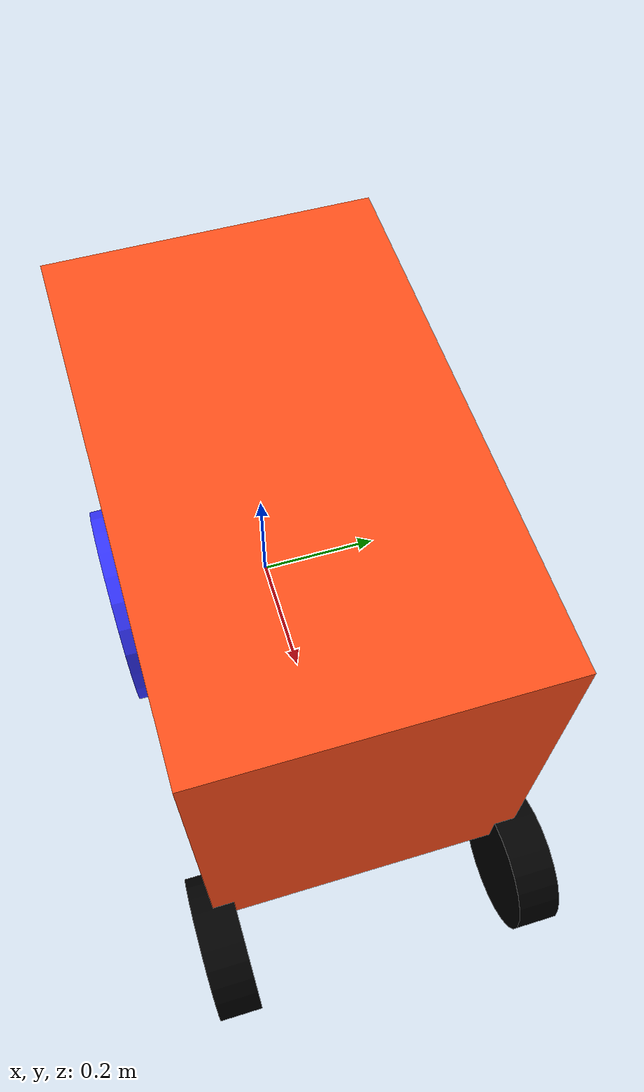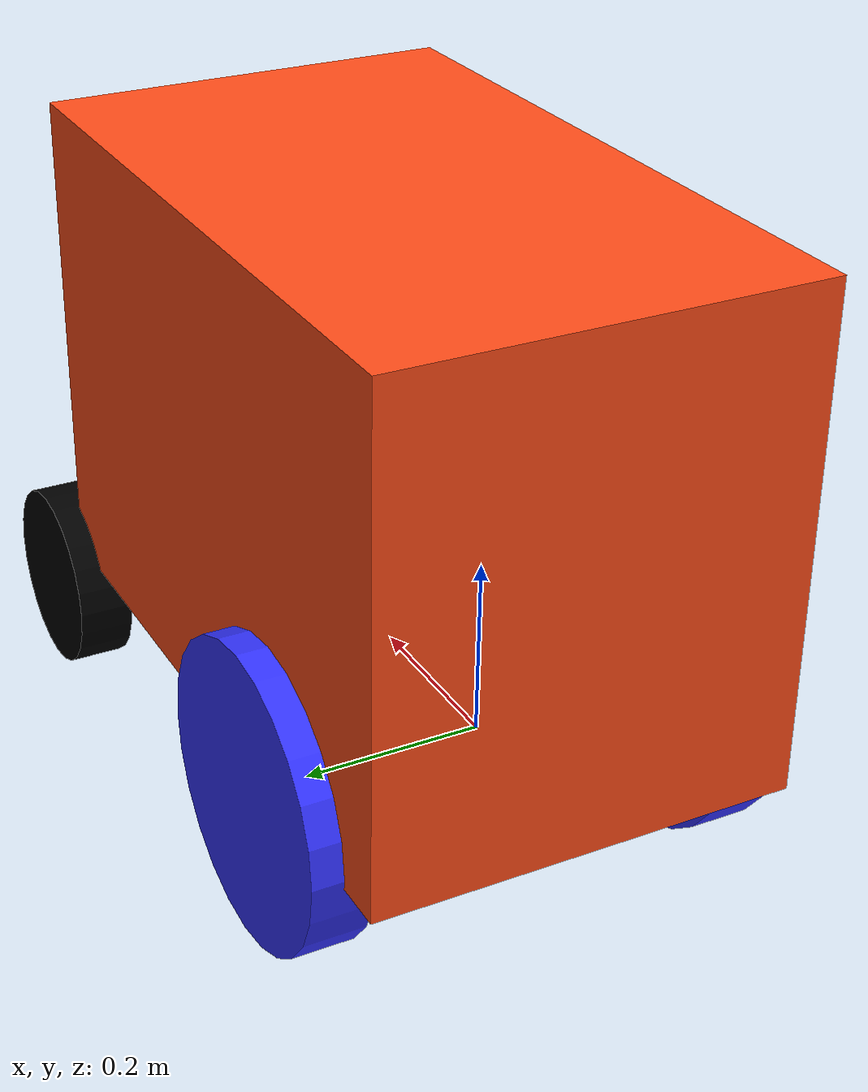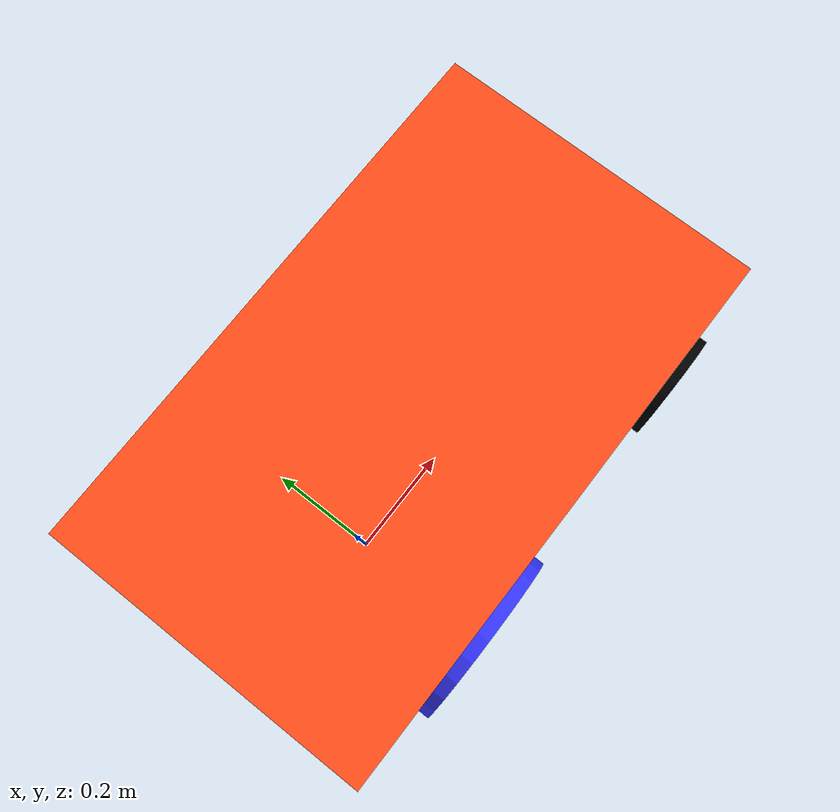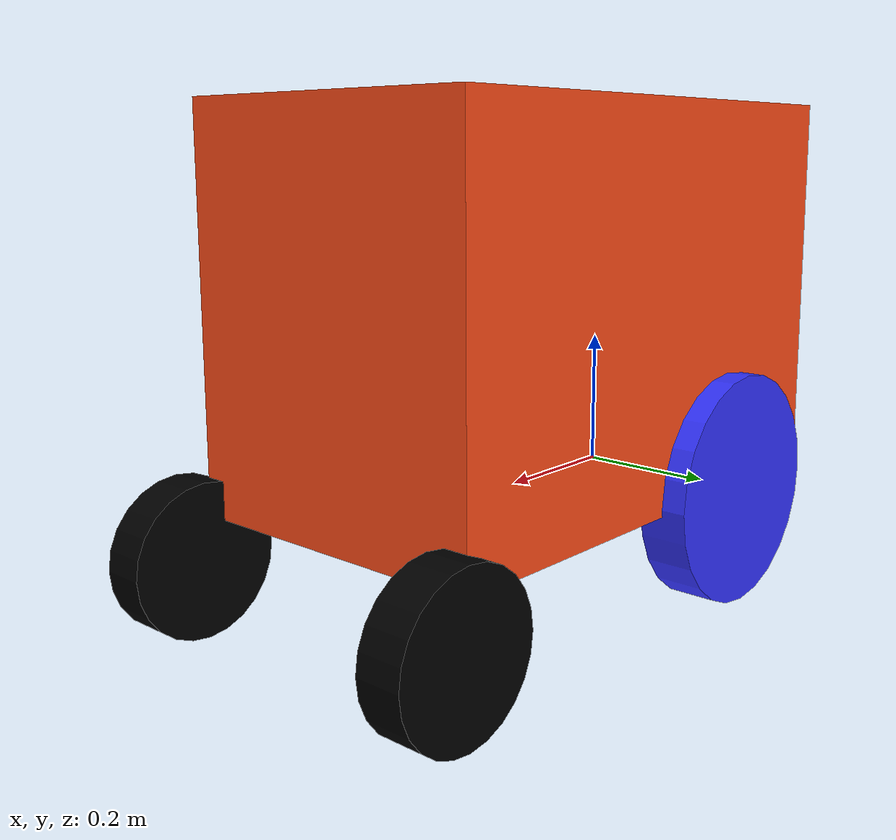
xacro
<?xml version="1.0"?>
<robot xmlns:xacro="http://www.ros.org/wiki/xacro" >

    <xacro:include filename="inertial_macros.xacro"/>

    <xacro:property name="chassis_length" value="0.80"/>
    <xacro:property name="chassis_width" value="0.48"/>
    <xacro:property name="chassis_height" value="0.57"/>
    <xacro:property name="chassis_mass" value="50.0"/>
    <xacro:property name="main_wheel_radius" value="0.17"/>
    <xacro:property name="main_wheel_thickness" value="0.07"/>
    <xacro:property name="main_wheel_mass" value="2.0"/>
    <xacro:property name="wheel_offset_x" value="0.226"/>
    <xacro:property name="wheel_offset_y" value="0.24"/>
    <xacro:property name="wheel_offset_z" value="0.01"/>
    <xacro:property name="small_wheel_radius" value="0.11"/>
    <xacro:property name="small_wheel_thickness" value="0.065"/>
    <xacro:property name="small_wheel_mass" value="0.1"/>

    <material name="white">
        <color rgba="1 1 1 1" />
    </material>

    <material name="orange">
        <color rgba="1 0.3 0.1 1"/>
    </material>

    <material name="blue">
        <color rgba="0.2 0.2 1 1"/>
    </material>

    <material name="black">
        <color rgba="0 0 0 1"/>
    </material>

    <material name="red">
        <color rgba="1 0 0 1"/>
    </material>

<!-- BASE LINK -->

    <link name="base_link">

    </link>

<!-- BASE_FOOTPRINT LINK -->

    <joint name="base_footprint_joint" type="fixed">
        <parent link="base_link"/>
        <child link="base_footprint"/>
        <origin xyz="0 0 0" rpy="0 0 0"/>
    </joint>

    <link name="base_footprint">
    </link>

<!-- CHASSIS LINK -->

    <joint name="chassis_joint" type="fixed">
        <parent link="base_link"/>
        <child link="chassis"/>
        <origin xyz="${-wheel_offset_x} 0 ${-wheel_offset_z}"/>
    </joint>

    <link name="chassis">
        <visual>
            <origin xyz="${chassis_length/2} 0 ${chassis_height/2}"/>
            <geometry>
                <box size="${chassis_length} ${chassis_width} ${chassis_height}"/>
            </geometry>
            <material name="orange"/>
        </visual>
        <collision>
            <origin xyz="${chassis_length/2} 0 ${chassis_height/2}"/>
            <geometry>
                <box size="${chassis_length} ${chassis_width} ${chassis_height}"/>
            </geometry>
        </collision>
        <xacro:inertial_box mass="0.5" x="${chassis_length}" y="${chassis_width}" z="${chassis_height}">
            <origin xyz="${chassis_length/2} 0 ${chassis_height/2}" rpy="0 0 0"/>
        </xacro:inertial_box>
    </link>

    <gazebo reference="chassis">
        <material>Gazebo/Orange</material>
    </gazebo>

<!-- LEFT WHEEL LINK -->

    <joint name="left_wheel_joint" type="continuous">
        <parent link="base_link"/>
        <child link="left_wheel"/>
        <origin xyz="0 ${wheel_offset_y} 0" rpy="-${pi/2} 0 0" />
        <axis xyz="0 0 1"/>
    </joint>

    <link name="left_wheel">
        <visual>
            <geometry>
                <cylinder radius="${main_wheel_radius}" length="${main_wheel_thickness}"/>
            </geometry>
            <material name="blue"/>
        </visual>
        <collision>
            <geometry>
                <cylinder radius="${main_wheel_radius}" length="${main_wheel_thickness}"/>
            </geometry>
        </collision>
        <xacro:inertial_cylinder mass="${main_wheel_mass}" length="${main_wheel_thickness}" radius="${main_wheel_radius}">
            <origin xyz="0 0 0" rpy="0 0 0"/>
        </xacro:inertial_cylinder>
    </link>

    <gazebo reference="left_wheel">
        <material>Gazebo/Blue</material>
    </gazebo>

<!-- RIGHT WHEEL LINK -->

    <joint name="right_wheel_joint" type="continuous">
       <parent link="base_link"/>
        <child link="right_wheel"/>
        <origin xyz="0 ${-wheel_offset_y} 0" rpy="${pi/2} 0 0" />
        <axis xyz="0 0 -1"/>
    </joint>

    <link name="right_wheel">
        <visual>
            <geometry>
                <cylinder radius="${main_wheel_radius}" length="${main_wheel_thickness}"/>
            </geometry>
            <material name="blue"/>
        </visual>
        <collision>
            <geometry>
                <cylinder radius="${main_wheel_radius}" length="${main_wheel_thickness}"/>
            </geometry>
        </collision>
        <xacro:inertial_cylinder mass="${main_wheel_mass}" length="${main_wheel_thickness}" radius="${main_wheel_radius}">
            <origin xyz="0 0 0" rpy="0 0 0"/>
        </xacro:inertial_cylinder>
    </link>

    <gazebo reference="right_wheel">
        <material>Gazebo/Blue</material>
    </gazebo>

<!-- Front RIGHT WHEEL LINK -->

   <joint name="front_right_swivel_joint" type="continuous">
      <axis xyz="0 0 1"/>
      <parent link="base_link"/>
      <child link="front_right_swivel"/>
      <origin rpy="0 0 0" xyz="0.54 -${chassis_width/2} -${main_wheel_radius - small_wheel_radius}"/>
      <dynamics damping="0.0" friction="0.01" />
    </joint>

   <link name="front_right_swivel">
      <visual>
        <geometry>
          <cylinder length="0.065" radius="0.01"/>
        </geometry>
        <material name="white">
          <color rgba="0 0 0 1"/>
        </material>
      </visual>
      <collision>
        <geometry>
          <cylinder length="0.065" radius="0.01"/>
        </geometry>
      </collision>
      <xacro:inertial_cylinder mass="0.1" length="0.065" radius="0.01">
        <origin xyz="0 0 0" rpy="0 0 0"/>
      </xacro:inertial_cylinder>
    </link>

   <gazebo reference="front_right_swivel">
        <material>Gazebo/White</material>
   </gazebo>

   <joint name="front_right_wheel_joint" type="continuous">
      <axis xyz="0 0 1"/>
      <parent link="front_right_swivel"/>
      <child link="front_right_wheel"/>
      <origin rpy="1.57075 0 0" xyz="0.065 0 0"/>
      <dynamics damping="0.0" friction="0.01" />
   </joint>

   <link name="front_right_wheel">
      <visual>
        <geometry>
          <cylinder length="${small_wheel_thickness}" radius="${small_wheel_radius}"/>
        </geometry>
        <material name="white">
          <color rgba="0 0 0 1"/>
        </material>
      </visual>
      <collision>
        <geometry>
          <cylinder length="${small_wheel_thickness}" radius="${small_wheel_radius}"/>
        </geometry>
        <surface>
          <friction>
            <ode>
              <mu>0.01</mu>
              <mu2>0.01</mu2>
            </ode>
          </friction>
        </surface>
      </collision>
      <xacro:inertial_cylinder mass="${small_wheel_mass}" length="${small_wheel_thickness}" radius="${small_wheel_radius}">
        <origin xyz="0 0 0" rpy="0 0 0"/>
      </xacro:inertial_cylinder>
   </link>

   <gazebo reference="front_right_wheel">
        <material>Gazebo/Blue</material>
   </gazebo>

<!-- Front Left WHEEL LINK -->

   <joint name="front_left_swivel_joint" type="continuous">
      <axis xyz="0 0 1"/>
      <parent link="base_link"/>
      <child link="front_left_swivel"/>
      <origin rpy="0 0 0" xyz="0.54 ${chassis_width/2} -${main_wheel_radius - small_wheel_radius}"/>
      <dynamics damping="0.0" friction="0.01" />
   </joint>

   <link name="front_left_swivel">
      <visual>
        <geometry>
          <cylinder length="0.065" radius="0.01"/>
        </geometry>
        <material name="white">
          <color rgba="0 0 0 1"/>
        </material>
      </visual>
      <collision>
        <geometry>
          <cylinder length="0.065" radius="0.01"/>
        </geometry>
      </collision>
      <xacro:inertial_cylinder mass="0.1" length="0.065" radius="0.01">
        <origin xyz="0 0 0" rpy="0 0 0"/>
      </xacro:inertial_cylinder>
   </link>

   <gazebo reference="front_left_swivel">
        <material>Gazebo/White</material>
   </gazebo>

   <joint name="front_left_wheel_joint" type="continuous">
      <axis xyz="0 0 -1.0"/>
      <parent link="front_left_swivel"/>
      <child link="front_left_wheel"/>
      <origin rpy="-1.57075 0 0" xyz="0.065 0 0"/>
      <dynamics damping="0.0" friction="0.01" />
   </joint>

   <link name="front_left_wheel">
      <visual>
        <geometry>
          <cylinder length="${small_wheel_thickness}" radius="${small_wheel_radius}"/>
        </geometry>
        <material name="white">
          <color rgba="0 0 0 1"/>
        </material>
      </visual>
      <collision>
        <geometry>
          <cylinder length="${small_wheel_thickness}" radius="${small_wheel_radius}"/>
        </geometry>
        <surface>
          <friction>
            <ode>
              <mu>0.01</mu>
              <mu2>0.01</mu2>
            </ode>
          </friction>
        </surface>
      </collision>
      <xacro:inertial_cylinder mass="${small_wheel_mass}" length="${small_wheel_thickness}" radius="${small_wheel_radius}">
        <origin xyz="0 0 0" rpy="0 0 0"/>
      </xacro:inertial_cylinder>
   </link>

   <gazebo reference="front_left_wheel">
        <material>Gazebo/Blue</material>
   </gazebo>

</robot>
